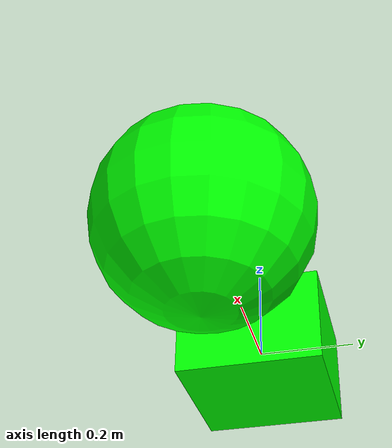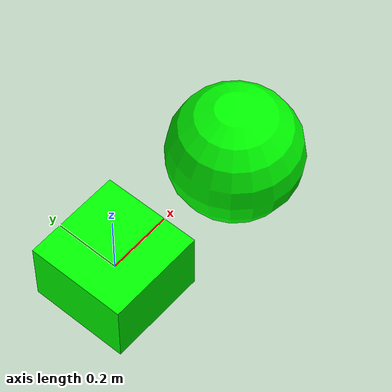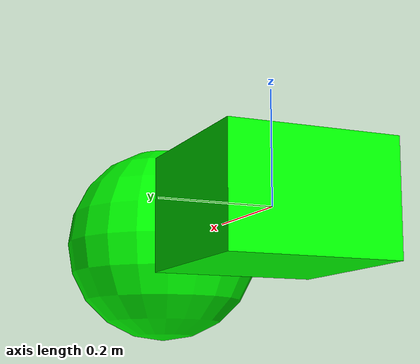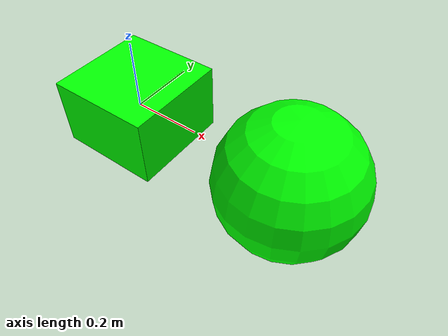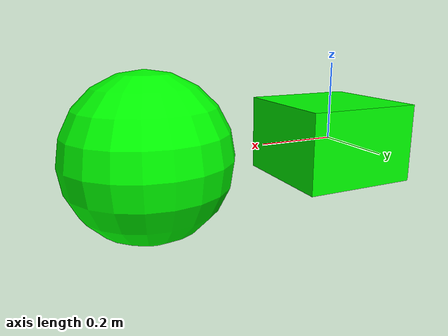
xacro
<robot name="test_robot" xmlns:xacro="http://ros.org/wiki/xacro">
  <xacro:property name="gcolor" value="0 1 0 2.0" />

  <material name="green">
    <color rgba="${gcolor}" />
  </material>

  <link name="base_link"/>

  <joint name="body_joint" type="fixed">
    <parent link="base_link"/>
    <child  link="body_link"/>
  </joint>

  <link name="body_link">
    <visual>
      <geometry>
        <box size="0.3 0.3 0.2"/>
      </geometry>
      <origin xyz="0 0 0" rpy="0 0 0"/>
      <material name="green" />
    </visual>
  </link>

  <joint name="body_joint2" type="fixed">
    <parent link="body_link"/>
    <child link="body_link2"/>
    <origin xyz="0.5 0 0" rpy="0 0 0"/>
  </joint>

  <link name="body_link2">
    <visual>
      <geometry>
        <sphere radius="0.2"/>
      </geometry>
      <origin  xyz="0 0 0" rpy="0 0 0"/>
      <material name="green"/>
    </visual>
  </link>

</robot>
